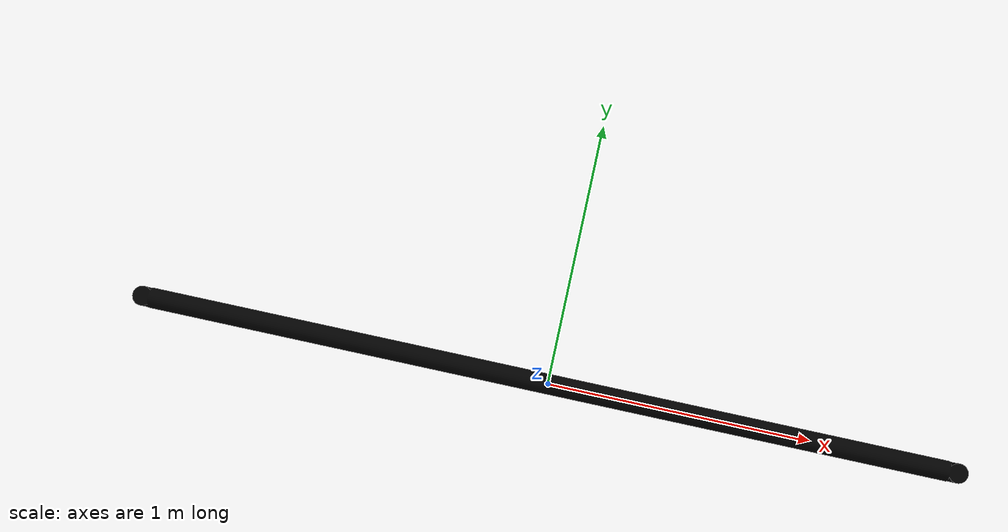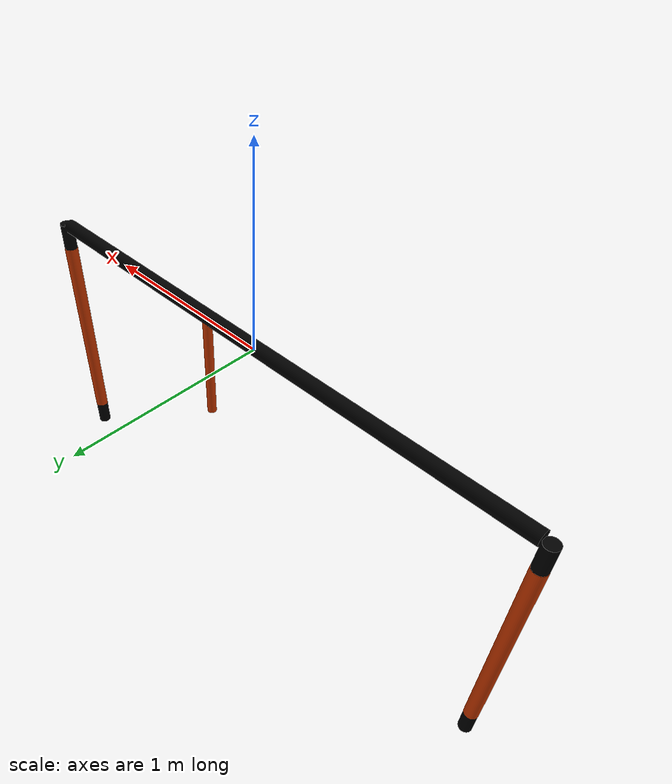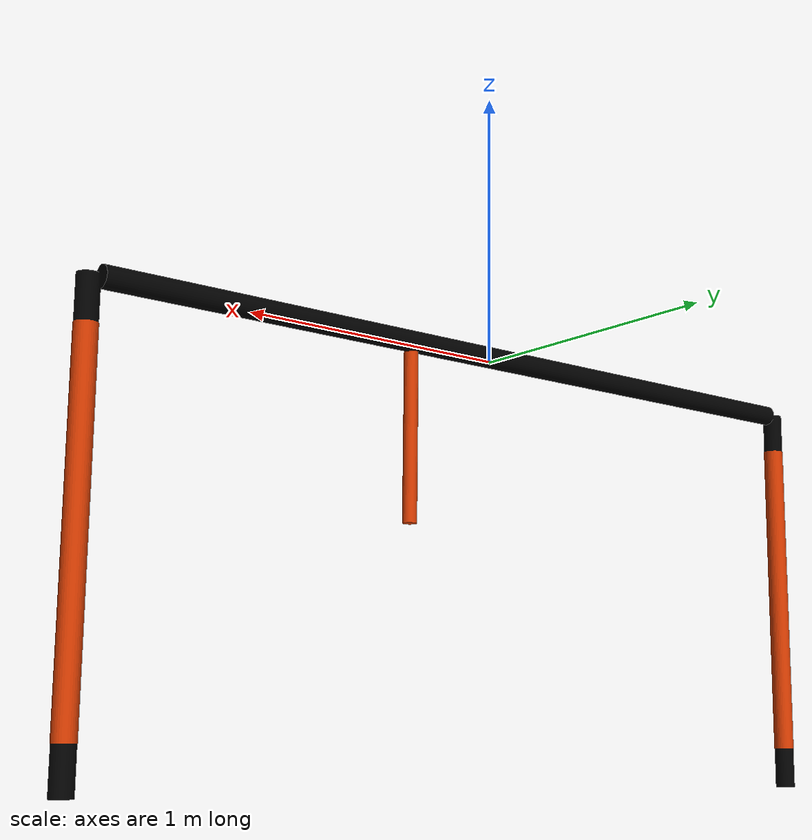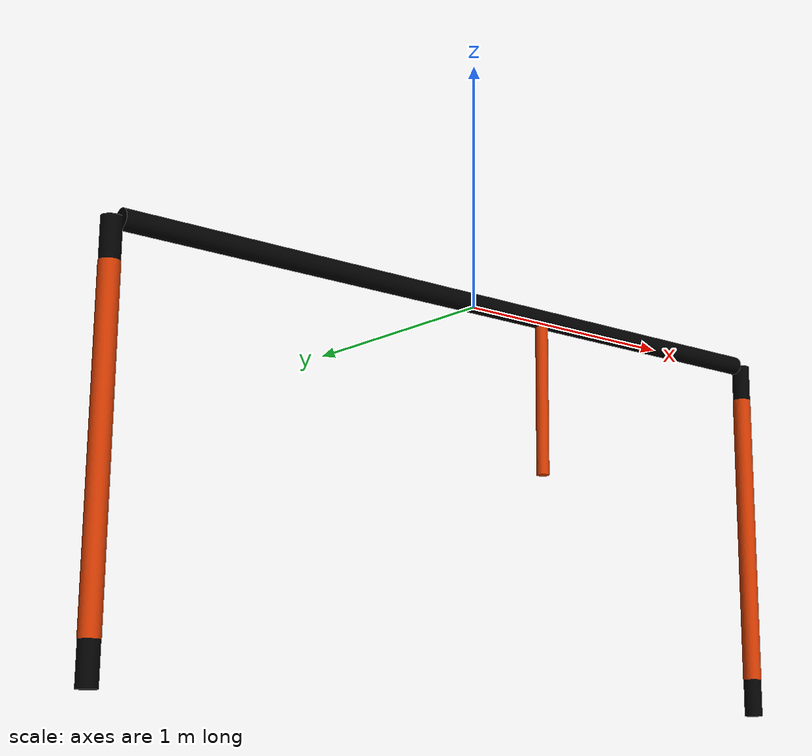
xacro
<robot
  name="StartGate_robot">
  <link
    name="StartGate_link">
    <inertial>
      <origin
        xyz="0 0 0"
        rpy="0 0 0" />
      <mass
        value="0.1" />
        <inertia
          ixx="0.01"
          ixy="0.01"
          ixz="0.01"
          iyy="0.01"
          iyz="0.01"
          izz="0.01" />
      </inertial>
    <visual>
      <origin
        xyz="0 0 0"
        rpy="0 0 0" />
      <geometry>
        <mesh filename="package://robosub_descriptions/meshes/StartGate.dae" />
      </geometry>
    </visual>
    <collision>
      <origin
        xyz="0 0 0"
        rpy="0 0 0" />
      <geometry>
        <mesh filename="package://robosub_descriptions/meshes/StartGate.dae" />
      </geometry>
    </collision>
  </link>
  <gazebo reference="StartGate_link">
      <turnGravityOff>true</turnGravityOff>
  </gazebo>
</robot>
